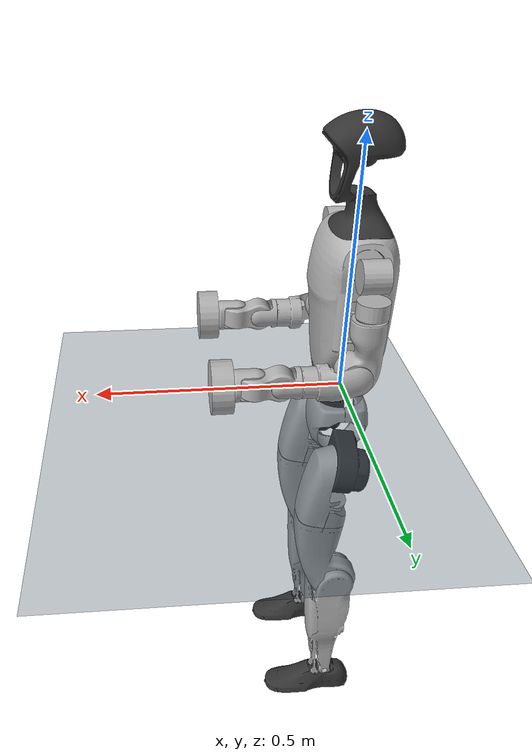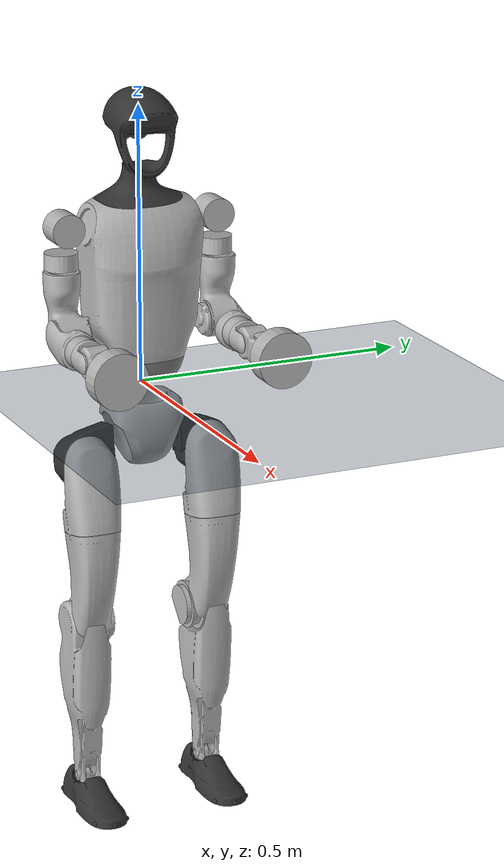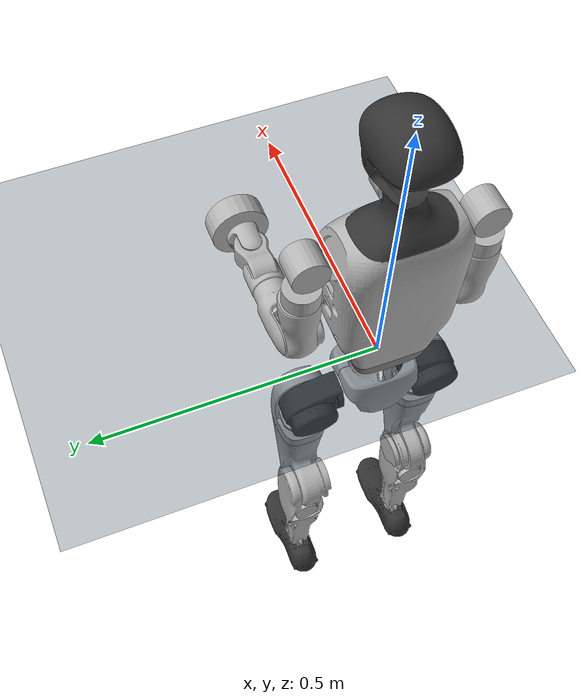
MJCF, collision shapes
<mujoco model="g1_shanghai_omniretarget">
  <compiler angle="radian" meshdir="."/>

  <asset>
    <mesh name="pelvis" content_type="model/obj" file="../g1/assets/pelvis.obj"/>
    <mesh name="pelvis_contour_link" content_type="model/obj" file="../g1/assets/pelvis_contour_link.obj"/>
    <mesh name="left_hip_pitch_link" content_type="model/obj" file="../g1/assets/left_hip_pitch_link.obj"/>
    <mesh name="left_hip_roll_link" content_type="model/obj" file="../g1/assets/left_hip_roll_link.obj"/>
    <mesh name="left_hip_yaw_link" content_type="model/obj" file="../g1/assets/left_hip_yaw_link.obj"/>
    <mesh name="left_knee_link" content_type="model/obj" file="../g1/assets/left_knee_link.obj"/>
    <mesh name="left_ankle_pitch_link" content_type="model/obj" file="../g1/assets/left_ankle_pitch_link.obj"/>
    <mesh name="left_ankle_roll_link" content_type="model/obj" file="../g1/assets/left_ankle_roll_link.obj"/>
    <mesh name="right_hip_pitch_link" content_type="model/obj" file="../g1/assets/right_hip_pitch_link.obj"/>
    <mesh name="right_hip_roll_link" content_type="model/obj" file="../g1/assets/right_hip_roll_link.obj"/>
    <mesh name="right_hip_yaw_link" content_type="model/obj" file="../g1/assets/right_hip_yaw_link.obj"/>
    <mesh name="right_knee_link" content_type="model/obj" file="../g1/assets/right_knee_link.obj"/>
    <mesh name="right_ankle_pitch_link" content_type="model/obj" file="../g1/assets/right_ankle_pitch_link.obj"/>
    <mesh name="right_ankle_roll_link" content_type="model/obj" file="../g1/assets/right_ankle_roll_link.obj"/>
    <mesh name="waist_yaw_link" content_type="model/obj" file="../g1/assets/waist_yaw_link.obj"/>
    <mesh name="waist_roll_link" content_type="model/obj" file="../g1/assets/waist_roll_link.obj"/>
    <mesh name="torso_link" content_type="model/obj" file="../g1/assets/torso_link.obj"/>
    <mesh name="logo_link" content_type="model/obj" file="../g1/assets/logo_link.obj"/>
    <mesh name="head_link" content_type="model/obj" file="../g1/assets/head_link.obj"/>
    <mesh name="waist_support_link" content_type="model/obj" file="../g1/assets/waist_support_link.obj"/>
    <mesh name="left_shoulder_pitch_link" content_type="model/obj" file="../g1/assets/left_shoulder_pitch_link.obj"/>
    <mesh name="left_shoulder_roll_link" content_type="model/obj" file="../g1/assets/left_shoulder_roll_link.obj"/>
    <mesh name="left_shoulder_yaw_link" content_type="model/obj" file="../g1/assets/left_shoulder_yaw_link.obj"/>
    <mesh name="left_elbow_link" content_type="model/obj" file="../g1/assets/left_elbow_link.obj"/>
    <mesh name="left_wrist_roll_link" content_type="model/obj" file="../g1/assets/left_wrist_roll_link.obj"/>
    <mesh name="left_wrist_pitch_link" content_type="model/obj" file="../g1/assets/left_wrist_pitch_link.obj"/>
    <mesh name="left_wrist_yaw_link" content_type="model/obj" file="../g1/assets/left_wrist_yaw_link.obj"/>
    <mesh name="left_rubber_hand_link" content_type="model/stl" file="meshes/left_rubber_hand.STL"/>
    <mesh name="right_shoulder_pitch_link" content_type="model/obj" file="../g1/assets/right_shoulder_pitch_link.obj"/>
    <mesh name="right_shoulder_roll_link" content_type="model/obj" file="../g1/assets/right_shoulder_roll_link.obj"/>
    <mesh name="right_shoulder_yaw_link" content_type="model/obj" file="../g1/assets/right_shoulder_yaw_link.obj"/>
    <mesh name="right_elbow_link" content_type="model/obj" file="../g1/assets/right_elbow_link.obj"/>
    <mesh name="right_wrist_roll_link" content_type="model/obj" file="../g1/assets/right_wrist_roll_link.obj"/>
    <mesh name="right_wrist_pitch_link" content_type="model/obj" file="../g1/assets/right_wrist_pitch_link.obj"/>
    <mesh name="right_wrist_yaw_link" content_type="model/obj" file="../g1/assets/right_wrist_yaw_link.obj"/>
    <mesh name="right_rubber_hand_link" content_type="model/stl" file="meshes/right_rubber_hand.STL"/>

  </asset>

  <worldbody>
    <geom name="ground" type="plane" size="10 10 0.1" pos="0 0 0" material="MatPlane" />
    <light pos="0 0 1000" castshadow="true" />
    <body name="pelvis">
      <inertial pos="0 0 -0.0760301" quat="1 0 -0.000398273 0" mass="3.814" diaginertia="0.0105549 0.00931478 0.0079185"/>
      <freejoint/>
      <geom type="mesh" contype="0" conaffinity="0" group="1" density="0" rgba="0.2 0.2 0.2 1" mesh="pelvis"/>
      <body name="pelvis_contour_link"><inertial pos="0 0 0" mass="0.001" diaginertia="1e-07 1e-07 1e-07" />
        <geom type="mesh" contype="0" conaffinity="0" group="1" density="0" rgba="0.7 0.7 0.7 1" mesh="pelvis_contour_link"/>
        <geom name="pelvis_contour_link" type="mesh" rgba="0.7 0.7 0.7 1" mesh="pelvis_contour_link"/>
      </body>
      <body name="left_hip_pitch_link" pos="0 0.064452 -0.1027">
        <inertial pos="0.002741 0.047791 -0.02606" quat="0.954862 0.293964 0.0302556 0.030122" mass="1.35" diaginertia="0.00181517 0.00153422 0.00116212"/>
        <joint name="left_hip_pitch_joint" pos="0 0 0" axis="0 1 0" range="-2.5307 2.8798" actuatorfrcrange="-88 88"/>
        <geom type="mesh" contype="0" conaffinity="0" group="1" density="0" rgba="0.2 0.2 0.2 1" mesh="left_hip_pitch_link"/>
        <geom name="left_hip_pitch_link" type="mesh" rgba="0.2 0.2 0.2 1" mesh="left_hip_pitch_link"/>
        <body name="left_hip_roll_link" pos="0 0.052 -0.030465" quat="0.996179 0 -0.0873386 0">
          <inertial pos="0.029812 -0.001045 -0.087934" quat="0.977808 -1.97119e-05 0.205576 -0.0403793" mass="1.52" diaginertia="0.00254986 0.00241169 0.00148755"/>
          <joint name="left_hip_roll_joint" pos="0 0 0" axis="1 0 0" range="-0.5236 2.9671" actuatorfrcrange="-88 88"/>
          <geom type="mesh" contype="0" conaffinity="0" group="1" density="0" rgba="0.7 0.7 0.7 1" mesh="left_hip_roll_link"/>
          <geom name="left_hip_roll_link" type="mesh" rgba="0.7 0.7 0.7 1" mesh="left_hip_roll_link"/>
          <body name="left_hip_yaw_link" pos="0.025001 0 -0.12412">
            <inertial pos="-0.057709 -0.010981 -0.15078" quat="0.600598 0.15832 0.223482 0.751181" mass="1.702" diaginertia="0.00776166 0.00717575 0.00160139"/>
            <joint name="left_hip_yaw_joint" pos="0 0 0" axis="0 0 1" range="-2.7576 2.7576" actuatorfrcrange="-88 88"/>
            <geom type="mesh" contype="0" conaffinity="0" group="1" density="0" rgba="0.7 0.7 0.7 1" mesh="left_hip_yaw_link"/>
            <geom name="left_hip_yaw_link" type="mesh" rgba="0.7 0.7 0.7 1" mesh="left_hip_yaw_link"/>
            <body name="left_knee_link" pos="-0.078273 0.0021489 -0.17734" quat="0.996179 0 0.0873386 0">
              <inertial pos="0.0054289 0.00394359 -0.12156" quat="0.923755 -0.0320867 0.015919 0.381305" mass="1.942" diaginertia="0.0116342 0.0115308 0.00146637"/>
              <joint name="left_knee_joint" pos="0 0 0" axis="0 1 0" range="-0.087267 2.8798" actuatorfrcrange="-139 139"/>
              <geom type="mesh" contype="0" conaffinity="0" group="1" density="0" rgba="0.7 0.7 0.7 1" mesh="left_knee_link"/>
              <geom name="left_knee_link" type="mesh" rgba="0.7 0.7 0.7 1" mesh="left_knee_link"/>
              <body name="left_ankle_intermediate_1_link" pos="0 0 -0.28">
                <inertial pos="0 0 0" mass="0.01" diaginertia="1e-6 1e-6 1e-6"/>
                <geom type="sphere" size="0.01" rgba="0.7 0.7 0.7 1" contype="0" conaffinity="0" density="0" group="1"/>
                <geom name="left_ankle_intermediate_1_link" type="sphere" size="0.01"/>
              </body>
              <body name="left_ankle_pitch_link" pos="0 -9.4445e-05 -0.30001">
                <inertial pos="-0.007269 0 0.011137" quat="0.603053 0.369225 0.369225 0.603053" mass="0.074" diaginertia="1.89e-05 1.40805e-05 6.9195e-06"/>
                <joint name="left_ankle_pitch_joint" pos="0 0 0" axis="0 1 0" range="-0.87267 0.5236" actuatorfrcrange="-50 50"/>
                <geom type="mesh" contype="0" conaffinity="0" group="1" density="0" rgba="0.7 0.7 0.7 1" mesh="left_ankle_pitch_link"/>
                <geom name="left_ankle_pitch_link" type="mesh" rgba="0.7 0.7 0.7 1" mesh="left_ankle_pitch_link"/>
                <body name="left_ankle_roll_link" pos="0 0 -0.017558">
                  <inertial pos="0.0267456 0 -0.0165357" quat="-0.000462715 0.728356 -0.000596289 0.685198" mass="0.613" diaginertia="0.00171785 0.00165955 0.000221997"/>
                  <joint name="left_ankle_roll_joint" pos="0 0 0" axis="1 0 0" range="-0.2618 0.2618" actuatorfrcrange="-50 50"/>
                  <geom type="mesh" contype="0" conaffinity="0" group="1" density="0" rgba="0.2 0.2 0.2 1" mesh="left_ankle_roll_link"/>
                  <geom name="left_ankle_roll_link" type="mesh" rgba="0.2 0.2 0.2 1" mesh="left_ankle_roll_link"/>
                  <!-- sphere_3 -->
                  <body name="left_ankle_roll_sphere_3_link" pos="0.12 0.03 -0.03">
                    <inertial pos="0 0 0" mass="0.001" diaginertia="1e-7 1e-7 1e-7"/>
                    <geom type="sphere" size="0.005" rgba="0.2 0.2 0.2 1" contype="0" conaffinity="0" density="0" group="1"/>
                    <geom name="left_ankle_roll_sphere_3_link" type="sphere" size="0.005"/>
                  </body>

                  <!-- sphere_4 -->
                  <body name="left_ankle_roll_sphere_4_link" pos="0.12 -0.03 -0.03">
                    <inertial pos="0 0 0" mass="0.001" diaginertia="1e-7 1e-7 1e-7"/>
                    <geom type="sphere" size="0.005" rgba="0.2 0.2 0.2 1" contype="0" conaffinity="0" density="0" group="1"/>
                    <geom name="left_ankle_roll_sphere_4_link" type="sphere" size="0.005"/>
                  </body>

                  <!-- sphere_5 -->
                  <body name="left_ankle_roll_sphere_5_link" pos="0.14 0 -0.03">
                    <inertial pos="0 0 0" mass="0.001" diaginertia="1e-7 1e-7 1e-7"/>
                    <geom type="sphere" size="0.005" rgba="0.2 0.2 0.2 1" contype="0" conaffinity="0" density="0" group="1"/>
                    <geom name="left_ankle_roll_sphere_5_link" type="sphere" size="0.005"/>
                  </body>

                  <!-- sphere_1 -->
                  <body name="left_ankle_roll_sphere_1_link" pos="-0.05 0.025 -0.03">
                    <inertial pos="0 0 0" mass="0.001" diaginertia="1e-7 1e-7 1e-7"/>
                    <geom type="sphere" size="0.005" rgba="0.2 0.2 0.2 1" contype="0" conaffinity="0" density="0" group="1"/>
                    <geom name="left_ankle_roll_sphere_1_link" type="sphere" size="0.005"/>
                  </body>

                  <!-- sphere_2 -->
                  <body name="left_ankle_roll_sphere_2_link" pos="-0.05 -0.025 -0.03">
                    <inertial pos="0 0 0" mass="0.001" diaginertia="1e-7 1e-7 1e-7"/>
                    <geom type="sphere" size="0.005" rgba="0.2 0.2 0.2 1" contype="0" conaffinity="0" density="0" group="1"/>
                    <geom name="left_ankle_roll_sphere_2_link" type="sphere" size="0.005"/>
                  </body>
                </body>
              </body>
            </body>
          </body>
        </body>
      </body>
      <body name="right_hip_pitch_link" pos="0 -0.064452 -0.1027">
        <inertial pos="0.002741 -0.047791 -0.02606" quat="0.954862 -0.293964 0.0302556 -0.030122" mass="1.35" diaginertia="0.00181517 0.00153422 0.00116212"/>
        <joint name="right_hip_pitch_joint" pos="0 0 0" axis="0 1 0" range="-2.5307 2.8798" actuatorfrcrange="-88 88"/>
        <geom type="mesh" contype="0" conaffinity="0" group="1" density="0" rgba="0.2 0.2 0.2 1" mesh="right_hip_pitch_link"/>
        <geom name="right_hip_pitch_link" type="mesh" rgba="0.2 0.2 0.2 1" mesh="right_hip_pitch_link"/>
        <body name="right_hip_roll_link" pos="0 -0.052 -0.030465" quat="0.996179 0 -0.0873386 0">
          <inertial pos="0.029812 0.001045 -0.087934" quat="0.977808 1.97119e-05 0.205576 0.0403793" mass="1.52" diaginertia="0.00254986 0.00241169 0.00148755"/>
          <joint name="right_hip_roll_joint" pos="0 0 0" axis="1 0 0" range="-2.9671 0.5236" actuatorfrcrange="-88 88"/>
          <geom type="mesh" contype="0" conaffinity="0" group="1" density="0" rgba="0.7 0.7 0.7 1" mesh="right_hip_roll_link"/>
          <geom name="right_hip_roll_link" type="mesh" rgba="0.7 0.7 0.7 1" mesh="right_hip_roll_link"/>
          <body name="right_hip_yaw_link" pos="0.025001 0 -0.12412">
            <inertial pos="-0.057709 0.010981 -0.15078" quat="0.751181 0.223482 0.15832 0.600598" mass="1.702" diaginertia="0.00776166 0.00717575 0.00160139"/>
            <joint name="right_hip_yaw_joint" pos="0 0 0" axis="0 0 1" range="-2.7576 2.7576" actuatorfrcrange="-88 88"/>
            <geom type="mesh" contype="0" conaffinity="0" group="1" density="0" rgba="0.7 0.7 0.7 1" mesh="right_hip_yaw_link"/>
            <geom name="right_hip_yaw_link" type="mesh" rgba="0.7 0.7 0.7 1" mesh="right_hip_yaw_link"/>
            <body name="right_knee_link" pos="-0.078273 -0.0021489 -0.17734" quat="0.996179 0 0.0873386 0">
              <inertial pos="0.0054289 -0.00394359 -0.12156" quat="0.92366 0.0337939 0.0118407 -0.381537" mass="1.942" diaginertia="0.0116277 0.0115372 0.00146646"/>
              <joint name="right_knee_joint" pos="0 0 0" axis="0 1 0" range="-0.087267 2.8798" actuatorfrcrange="-139 139"/>
              <geom type="mesh" contype="0" conaffinity="0" group="1" density="0" rgba="0.7 0.7 0.7 1" mesh="right_knee_link"/>
              <geom name="right_knee_link" type="mesh" rgba="0.7 0.7 0.7 1" mesh="right_knee_link"/>
              <body name="right_ankle_intermediate_1_link" pos="0 0 -0.28">
                <inertial pos="0 0 0" mass="0.01" diaginertia="1e-6 1e-6 1e-6"/>
                <geom type="sphere" size="0.01"
                      rgba="0.7 0.7 0.7 1" contype="0" conaffinity="0" density="0" group="1"/>
                <geom name="right_ankle_intermediate_1_link" type="sphere" size="0.01"/>
              </body>
              <body name="right_ankle_pitch_link" pos="0 9.4445e-05 -0.30001">
                <inertial pos="-0.007269 0 0.011137" quat="0.603053 0.369225 0.369225 0.603053" mass="0.074" diaginertia="1.89e-05 1.40805e-05 6.9195e-06"/>
                <joint name="right_ankle_pitch_joint" pos="0 0 0" axis="0 1 0" range="-0.87267 0.5236" actuatorfrcrange="-50 50"/>
                <geom type="mesh" contype="0" conaffinity="0" group="1" density="0" rgba="0.7 0.7 0.7 1" mesh="right_ankle_pitch_link"/>
                <geom name="right_ankle_pitch_link" type="mesh" rgba="0.7 0.7 0.7 1" mesh="right_ankle_pitch_link"/>
                <body name="right_ankle_roll_link" pos="0 0 -0.017558">
                  <inertial pos="0.0267456 0 -0.0165357" quat="0.000462694 0.728356 0.000596267 0.685198" mass="0.613" diaginertia="0.00171785 0.00165955 0.000221997"/>
                  <joint name="right_ankle_roll_joint" pos="0 0 0" axis="1 0 0" range="-0.2618 0.2618" actuatorfrcrange="-50 50"/>
                  <geom type="mesh" contype="0" conaffinity="0" group="1" density="0" rgba="0.2 0.2 0.2 1" mesh="right_ankle_roll_link"/>
                  <geom name="right_ankle_roll_link" type="mesh" rgba="0.2 0.2 0.2 1" mesh="right_ankle_roll_link"/>
                  <body name="right_ankle_roll_sphere_3_link" pos="0.12 0.03 -0.03">
                    <inertial pos="0 0 0" mass="0.001" diaginertia="1e-7 1e-7 1e-7"/>
                    <geom type="sphere" size="0.005" rgba="0.2 0.2 0.2 1" contype="0" conaffinity="0" density="0" group="1"/>
                    <geom name="right_ankle_roll_sphere_3_link" type="sphere" size="0.005"/>
                  </body>

                  <body name="right_ankle_roll_sphere_4_link" pos="0.12 -0.03 -0.03">
                    <inertial pos="0 0 0" mass="0.001" diaginertia="1e-7 1e-7 1e-7"/>
                    <geom type="sphere" size="0.005" rgba="0.2 0.2 0.2 1" contype="0" conaffinity="0" density="0" group="1"/>
                    <geom name="right_ankle_roll_sphere_4_link" type="sphere" size="0.005"/>
                  </body>

                  <body name="right_ankle_roll_sphere_5_link" pos="0.14 0 -0.03">
                    <inertial pos="0 0 0" mass="0.001" diaginertia="1e-7 1e-7 1e-7"/>
                    <geom type="sphere" size="0.005" rgba="0.2 0.2 0.2 1" contype="0" conaffinity="0" density="0" group="1"/>
                    <geom name="right_ankle_roll_sphere_5_link" type="sphere" size="0.005"/>
                  </body>

                  <body name="right_ankle_roll_sphere_1_link" pos="-0.05 0.025 -0.03">
                    <inertial pos="0 0 0" mass="0.001" diaginertia="1e-7 1e-7 1e-7"/>
                    <geom type="sphere" size="0.005" rgba="0.2 0.2 0.2 1" contype="0" conaffinity="0" density="0" group="1"/>
                    <geom name="right_ankle_roll_sphere_1_link" type="sphere" size="0.005"/>
                  </body>

                  <body name="right_ankle_roll_sphere_2_link" pos="-0.05 -0.025 -0.03">
                    <inertial pos="0 0 0" mass="0.001" diaginertia="1e-7 1e-7 1e-7"/>
                    <geom type="sphere" size="0.005" rgba="0.2 0.2 0.2 1" contype="0" conaffinity="0" density="0" group="1"/>
                    <geom name="right_ankle_roll_sphere_2_link" type="sphere" size="0.005"/>
                  </body>
                </body>
              </body>
            </body>
          </body>
        </body>
      </body>
      <body name="waist_yaw_link">
        <inertial pos="0.003964 0 0.018769" quat="-0.0178291 0.628464 0.0282471 0.777121" mass="0.244" diaginertia="0.000158561 0.000124229 9.67669e-05"/>
        <joint name="waist_yaw_joint" pos="0 0 0" axis="0 0 1" range="-2.618 2.618" actuatorfrcrange="-88 88"/>
        <geom type="mesh" contype="0" conaffinity="0" group="1" density="0" rgba="0.7 0.7 0.7 1" mesh="waist_yaw_link"/>
        <body name="waist_roll_link" pos="-0.0039635 0 0.035">
          <inertial pos="0 -0.000236 0.010111" quat="0.99979 0.020492 0 0" mass="0.047" diaginertia="7.515e-06 6.40206e-06 3.98394e-06"/>
          <joint name="waist_roll_joint" pos="0 0 0" axis="1 0 0" range="-0.52 0.52" actuatorfrcrange="-50 50"/>
          <geom type="mesh" contype="0" conaffinity="0" group="1" density="0" rgba="0.7 0.7 0.7 1" mesh="waist_roll_link"/>
          <body name="torso_link" pos="0 0 0.019">
            <inertial pos="0.00270088 0.000679764 0.17981" quat="0.999922 -0.00504168 0.0109851 -0.00302003" mass="9.6" diaginertia="0.124129 0.112039 0.032579"/>
            <joint name="waist_pitch_joint" pos="0 0 0" axis="0 1 0" range="-0.52 0.52" actuatorfrcrange="-50 50"/>
            <geom type="mesh" contype="0" conaffinity="0" group="1" density="0" rgba="0.7 0.7 0.7 1" mesh="torso_link"/>
            <geom name="torso_link" type="mesh" rgba="0.7 0.7 0.7 1" mesh="torso_link"/>
            <geom pos="0.0039635 0 -0.054" quat="1 0 0 0" type="mesh" contype="0" conaffinity="0" group="1" density="0" rgba="0.2 0.2 0.2 1" mesh="logo_link"/>
            <geom pos="0.0039635 0 -0.054" quat="1 0 0 0" type="mesh" contype="0" conaffinity="0" group="1" density="0" rgba="0.2 0.2 0.2 1" mesh="head_link"/>
            <geom name="head_link" pos="0.0039635 0 -0.054" quat="1 0 0 0" type="mesh" rgba="0.2 0.2 0.2 1" mesh="head_link"/>
            <geom pos="0.0039635 0 -0.054" quat="1 0 0 0" type="mesh" contype="0" conaffinity="0" group="1" density="0" rgba="0.7 0.7 0.7 1" mesh="waist_support_link"/>
            <body name="waist_support_link" pos="0.0039635 0 -0.054">
              <inertial pos="0 0 0" mass="0.001" diaginertia="1e-7 1e-7 1e-7"/>
              <geom type="mesh" mesh="waist_support_link"
                    rgba="0.7 0.7 0.7 1" contype="0" conaffinity="0" density="0" group="1"/>
              <geom name="waist_support_link" type="mesh" mesh="waist_support_link"/>
            </body>
            <body name="left_shoulder_pitch_link" pos="0.0039563 0.10022 0.23778" quat="0.990264 0.139201 1.38722e-05 -9.86868e-05">
              <inertial pos="0 0.035892 -0.011628" quat="0.654152 0.0130458 -0.326267 0.68225" mass="0.718" diaginertia="0.000465864 0.000432842 0.000406394"/>
              <joint name="left_shoulder_pitch_joint" pos="0 0 0" axis="0 1 0" range="-3.0892 2.6704" actuatorfrcrange="-25 25"/>
              <geom type="mesh" contype="0" conaffinity="0" group="1" density="0" rgba="0.7 0.7 0.7 1" mesh="left_shoulder_pitch_link"/>
              <geom name="left_shoulder_pitch_link" size="0.03 0.025" pos="0 0.04 -0.01" quat="0.707107 0 0.707107 0" type="cylinder" rgba="0.7 0.7 0.7 1"/>
              <body name="left_shoulder_roll_link" pos="0 0.038 -0.013831" quat="0.990268 -0.139172 0 0">
                <inertial pos="-0.000227 0.00727 -0.063243" quat="0.701256 -0.0196223 -0.00710317 0.712604" mass="0.643" diaginertia="0.000691311 0.000618011 0.000388977"/>
                <joint name="left_shoulder_roll_joint" pos="0 0 0" axis="1 0 0" range="-1.5882 2.2515" actuatorfrcrange="-25 25"/>
                <geom type="mesh" contype="0" conaffinity="0" group="1" density="0" rgba="0.7 0.7 0.7 1" mesh="left_shoulder_roll_link"/>
                <geom name="left_shoulder_roll_link" size="0.03 0.015" pos="-0.004 0.006 -0.053" type="cylinder" rgba="0.7 0.7 0.7 1"/>
                <body name="left_shoulder_yaw_link" pos="0 0.00624 -0.1032">
                  <inertial pos="0.010773 -0.002949 -0.072009" quat="0.716879 -0.0964829 -0.0679942 0.687134" mass="0.734" diaginertia="0.00106187 0.00103217 0.000400661"/>
                  <joint name="left_shoulder_yaw_joint" pos="0 0 0" axis="0 0 1" range="-2.618 2.618" actuatorfrcrange="-25 25"/>
                  <geom type="mesh" contype="0" conaffinity="0" group="1" density="0" rgba="0.7 0.7 0.7 1" mesh="left_shoulder_yaw_link"/>
                  <geom name="left_shoulder_yaw_link" type="mesh" rgba="0.7 0.7 0.7 1" mesh="left_shoulder_yaw_link"/>
                  <body name="left_elbow_link" pos="0.015783 0 -0.080518">
                    <inertial pos="0.064956 0.004454 -0.010062" quat="0.541765 0.636132 0.388821 0.388129" mass="0.6" diaginertia="0.000443035 0.000421612 0.000259353"/>
                    <joint name="left_elbow_joint" pos="0 0 0" axis="0 1 0" range="-1.0472 2.0944" actuatorfrcrange="-25 25"/>
                    <geom type="mesh" contype="0" conaffinity="0" group="1" density="0" rgba="0.7 0.7 0.7 1" mesh="left_elbow_link"/>
                    <geom name="left_elbow_link" type="mesh" rgba="0.7 0.7 0.7 1" mesh="left_elbow_link"/>
                    <body name="left_wrist_roll_link" pos="0.1 0.00188791 -0.01">
                      <inertial pos="0.0171394 0.000537591 4.8864e-07" quat="0.575338 0.411667 -0.574906 0.411094" mass="0.085445" diaginertia="5.48211e-05 4.96646e-05 3.57798e-05"/>
                      <joint name="left_wrist_roll_joint" pos="0 0 0" axis="1 0 0" range="-1.97222 1.97222" actuatorfrcrange="-25 25"/>
                      <geom type="mesh" contype="0" conaffinity="0" group="1" density="0" rgba="0.7 0.7 0.7 1" mesh="left_wrist_roll_link"/>
                      <geom name="left_wrist_roll_link" type="mesh" rgba="0.7 0.7 0.7 1" mesh="left_wrist_roll_link"/>
                      <body name="left_wrist_pitch_link" pos="0.038 0 0">
                        <inertial pos="0.0229999 -0.00111685 -0.00111658" quat="0.249998 0.661363 0.293036 0.643608" mass="0.48405" diaginertia="0.000430353 0.000429873 0.000164648"/>
                        <joint name="left_wrist_pitch_joint" pos="0 0 0" axis="0 1 0" range="-1.61443 1.61443" actuatorfrcrange="-5 5"/>
                        <geom type="mesh" contype="0" conaffinity="0" group="1" density="0" rgba="0.7 0.7 0.7 1" mesh="left_wrist_pitch_link"/>
                        <geom name="left_wrist_pitch_link" type="mesh" rgba="0.7 0.7 0.7 1" mesh="left_wrist_pitch_link"/>
                        <body name="left_wrist_yaw_link" pos="0.046 0 0">
                          <inertial pos="0.0490416 0.0251156 0.00485457" quat="0.554529 0.336483 0.601927 0.465791" mass="0.256576" diaginertia="0.00046454 0.000440484 0.000227121"/>
                          <joint name="left_wrist_yaw_joint" pos="0 0 0" axis="0 0 1" range="-1.61443 1.61443" actuatorfrcrange="-5 5"/>
                          <geom type="mesh" contype="0" conaffinity="0" group="1" density="0" rgba="0.7 0.7 0.7 1" mesh="left_wrist_yaw_link"/>
                          <geom name="left_wrist_yaw_link" type="mesh" rgba="0.7 0.7 0.7 1" mesh="left_wrist_yaw_link"/>
                          <body name="left_rubber_hand_link" pos="0.0415 0.003 0">
                            <inertial
                                pos="0.05361310808 -0.00295905240 0.00215413091"
                                mass="0.170"
                                fullinertia="0.00010099485234748 0.00028135871571621 0.00021894770413514 0.00003618590790516 -0.00000074301518642 0.00000330189743286"/>
                            <geom type="cylinder" size="0.05 0.02" pos="0.0201 0 0"
                                  quat="0.70710678 0 -0.70710678 0"
                                  rgba="0.7 0.7 0.7 1" contype="0" conaffinity="0" density="0" group="1"/>
                            <geom name="left_rubber_hand_link" type="cylinder" size="0.05 0.02"
                                  pos="0.0201 0 0" quat="0.70710678 0 -0.70710678 0"/>
                          </body>
                        </body>
                      </body>
                    </body>
                  </body>
                </body>
              </body>
            </body>
            <body name="right_shoulder_pitch_link" pos="0.0039563 -0.10021 0.23778" quat="0.990264 -0.139201 1.38722e-05 9.86868e-05">
              <inertial pos="0 -0.035892 -0.011628" quat="0.68225 -0.326267 0.0130458 0.654152" mass="0.718" diaginertia="0.000465864 0.000432842 0.000406394"/>
              <joint name="right_shoulder_pitch_joint" pos="0 0 0" axis="0 1 0" range="-3.0892 2.6704" actuatorfrcrange="-25 25"/>
              <geom type="mesh" contype="0" conaffinity="0" group="1" density="0" rgba="0.7 0.7 0.7 1" mesh="right_shoulder_pitch_link"/>
              <geom name="right_shoulder_pitch_link" size="0.03 0.025" pos="0 -0.04 -0.01" quat="0.707107 0 0.707107 0" type="cylinder" rgba="0.7 0.7 0.7 1"/>
              <body name="right_shoulder_roll_link" pos="0 -0.038 -0.013831" quat="0.990268 0.139172 0 0">
                <inertial pos="-0.000227 -0.00727 -0.063243" quat="0.712604 -0.00710317 -0.0196223 0.701256" mass="0.643" diaginertia="0.000691311 0.000618011 0.000388977"/>
                <joint name="right_shoulder_roll_joint" pos="0 0 0" axis="1 0 0" range="-2.2515 1.5882" actuatorfrcrange="-25 25"/>
                <geom type="mesh" contype="0" conaffinity="0" group="1" density="0" rgba="0.7 0.7 0.7 1" mesh="right_shoulder_roll_link"/>
                <geom name="right_shoulder_roll_link" size="0.03 0.015" pos="-0.004 -0.006 -0.053" type="cylinder" rgba="0.7 0.7 0.7 1"/>
                <body name="right_shoulder_yaw_link" pos="0 -0.00624 -0.1032">
                  <inertial pos="0.010773 0.002949 -0.072009" quat="0.687134 -0.0679942 -0.0964829 0.716879" mass="0.734" diaginertia="0.00106187 0.00103217 0.000400661"/>
                  <joint name="right_shoulder_yaw_joint" pos="0 0 0" axis="0 0 1" range="-2.618 2.618" actuatorfrcrange="-25 25"/>
                  <geom type="mesh" contype="0" conaffinity="0" group="1" density="0" rgba="0.7 0.7 0.7 1" mesh="right_shoulder_yaw_link"/>
                  <geom name="right_shoulder_yaw_link" type="mesh" rgba="0.7 0.7 0.7 1" mesh="right_shoulder_yaw_link"/>
                  <body name="right_elbow_link" pos="0.015783 0 -0.080518">
                    <inertial pos="0.064956 -0.004454 -0.010062" quat="0.388129 0.388821 0.636132 0.541765" mass="0.6" diaginertia="0.000443035 0.000421612 0.000259353"/>
                    <joint name="right_elbow_joint" pos="0 0 0" axis="0 1 0" range="-1.0472 2.0944" actuatorfrcrange="-25 25"/>
                    <geom type="mesh" contype="0" conaffinity="0" group="1" density="0" rgba="0.7 0.7 0.7 1" mesh="right_elbow_link"/>
                    <geom name="right_elbow_link" type="mesh" rgba="0.7 0.7 0.7 1" mesh="right_elbow_link"/>
                    <body name="right_wrist_roll_link" pos="0.1 -0.00188791 -0.01">
                      <inertial pos="0.0171394 -0.000537591 4.8864e-07" quat="0.411667 0.575338 -0.411094 0.574906" mass="0.085445" diaginertia="5.48211e-05 4.96646e-05 3.57798e-05"/>
                      <joint name="right_wrist_roll_joint" pos="0 0 0" axis="1 0 0" range="-1.97222 1.97222" actuatorfrcrange="-25 25"/>
                      <geom type="mesh" contype="0" conaffinity="0" group="1" density="0" rgba="0.7 0.7 0.7 1" mesh="right_wrist_roll_link"/>
                      <geom name="right_wrist_roll_link" type="mesh" rgba="0.7 0.7 0.7 1" mesh="right_wrist_roll_link"/>
                      <body name="right_wrist_pitch_link" pos="0.038 0 0">
                        <inertial pos="0.0229999 0.00111685 -0.00111658" quat="0.643608 0.293036 0.661363 0.249998" mass="0.48405" diaginertia="0.000430353 0.000429873 0.000164648"/>
                        <joint name="right_wrist_pitch_joint" pos="0 0 0" axis="0 1 0" range="-1.61443 1.61443" actuatorfrcrange="-5 5"/>
                        <geom type="mesh" contype="0" conaffinity="0" group="1" density="0" rgba="0.7 0.7 0.7 1" mesh="right_wrist_pitch_link"/>
                        <geom name="right_wrist_pitch_link" type="mesh" rgba="0.7 0.7 0.7 1" mesh="right_wrist_pitch_link"/>
                        <body name="right_wrist_yaw_link" pos="0.046 0 0">
                          <inertial pos="0.0387158 0.0286637 -0.00156701" quat="0.356596 0.387749 0.611295 0.5906" mass="0.256576" diaginertia="0.000444208 0.000424569 0.000222248"/>
                          <joint name="right_wrist_yaw_joint" pos="0 0 0" axis="0 0 1" range="-1.61443 1.61443" actuatorfrcrange="-5 5"/>
                          <geom type="mesh" contype="0" conaffinity="0" group="1" density="0" rgba="0.7 0.7 0.7 1" mesh="right_wrist_yaw_link"/>
                          <geom name="right_wrist_yaw_link" type="mesh" rgba="0.7 0.7 0.7 1" mesh="right_wrist_yaw_link"/>
                          <body name="right_rubber_hand_link" pos="0.0415 -0.003 0">
                            <inertial
                                pos="0.05361310808 0.00295905240 0.00215413091"
                                mass="0.170"
                                fullinertia="0.00010099485234748 0.00028135871571621 0.00021894770413514 -0.00003618590790516 -0.00000074301518642 -0.00000330189743286"/>
                            <geom type="cylinder" size="0.05 0.02" pos="0.0201 0 0"
                                  quat="0.70710678 0 -0.70710678 0"
                                  rgba="0.7 0.7 0.7 1" contype="0" conaffinity="0" density="0" group="1"/>
                            <geom name="right_rubber_hand_link" type="cylinder" size="0.05 0.02"
                                  pos="0.0201 0 0" quat="0.70710678 0 -0.70710678 0"/>
                          </body>
                        </body>
                      </body>
                    </body>
                  </body>
                </body>
              </body>
            </body>
          </body>
        </body>
      </body>
    </body>

  </worldbody>

  <!-- setup scene -->
  <statistic center="1.0 0.7 1.0" extent="0.8"/>
  <visual>
    <headlight diffuse="0.6 0.6 0.6" ambient="0.1 0.1 0.1" specular="0.9 0.9 0.9"/>
    <rgba haze="0.15 0.25 0.35 1"/>
    <global azimuth="-140" elevation="-20"/>
  </visual>
  <asset>
    <texture name="texplane" builtin="checker" height="512" width="512" rgb1=".2 .3 .4" rgb2=".1 .15 .2" type="2d" />
    <material name="MatPlane" reflectance="0.5" shininess="0.01" specular="0.1" texrepeat="1 1" texture="texplane" texuniform="true" /></asset>

</mujoco>
